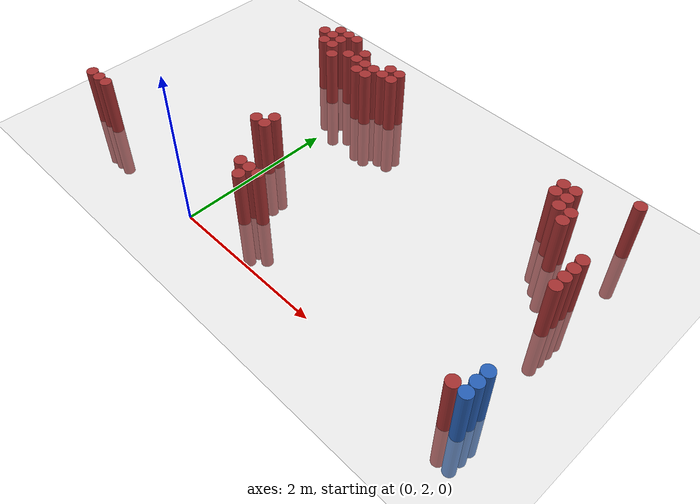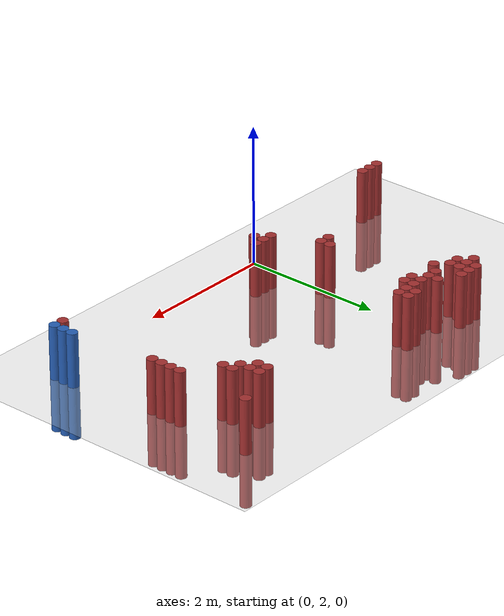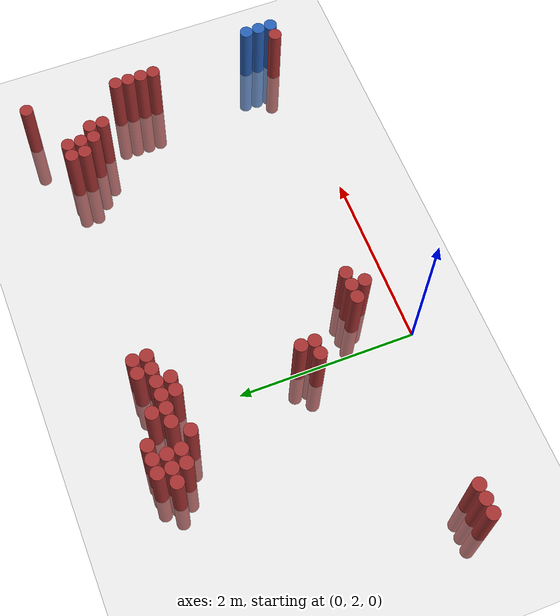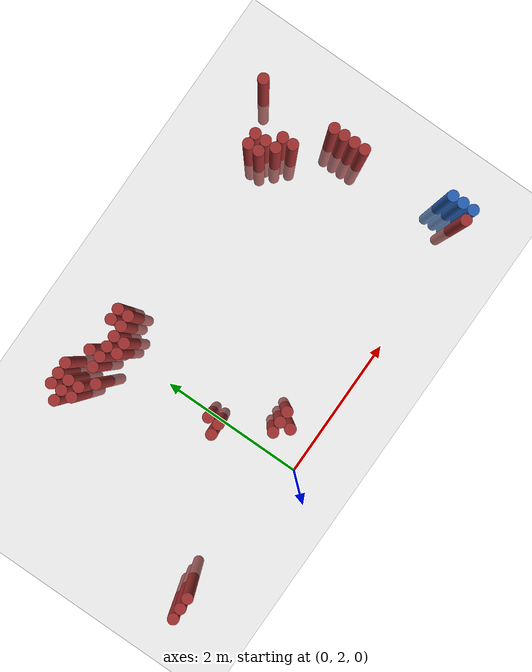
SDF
<sdf version="1.6">
 <world name="default">
  <model name="ground_plane">
   <static>1</static>
   <link name="link">
    <collision name="collision">
     <geometry><plane><normal>0 0 1</normal><size>100 100</size></plane></geometry>
     <surface><friction><ode><mu>100</mu><mu2>50</mu2></ode></friction></surface>
    </collision>
    <visual name="visual">
     <cast_shadows>0</cast_shadows>
     <geometry><plane><normal>0 0 1</normal><size>100 100</size></plane></geometry>
     <material>
      <script><uri>file://media/materials/scripts/gazebo.material</uri><name>Gazebo/Grey</name></script>
     </material>
    </visual>
   </link>
  </model>
  <model name="unit_cylinder_142">
   <static>1</static>
   <pose>3.925000 2.125000 0.000000 0.000000 0.000000 0.000000</pose>
   <link name="link">
    <inertial>
     <mass>1</mass>
     <inertia><ixx>0.145833</ixx><ixy>0</ixy><ixz>0</ixz><iyy>0.145833</iyy><iyz>0</iyz><izz>0.125</izz></inertia>
    </inertial>
    <collision name="collision">
     <geometry><cylinder><radius>0.075000</radius><length>1.5</length></cylinder></geometry>
    </collision>
    <visual name="visual">
     <geometry><cylinder><radius>0.075000</radius><length>1.5</length></cylinder></geometry>
     <material>
      <ambient>0.152000 0.379000 0.720000 1</ambient>
      <diffuse>0.152000 0.379000 0.720000 1</diffuse>
     </material>
     <material>
      <script><name>Gazebo/Grey</name><uri>file://media/materials/scripts/gazebo.material</uri></script>
     </material>
    </visual>
   </link>
  </model>
  <model name="unit_cylinder_144">
   <static>1</static>
   <pose>3.925000 2.275000 0.000000 0.000000 0.000000 0.000000</pose>
   <link name="link">
    <inertial>
     <mass>1</mass>
     <inertia><ixx>0.145833</ixx><ixy>0</ixy><ixz>0</ixz><iyy>0.145833</iyy><iyz>0</iyz><izz>0.125</izz></inertia>
    </inertial>
    <collision name="collision">
     <geometry><cylinder><radius>0.075000</radius><length>1.5</length></cylinder></geometry>
    </collision>
    <visual name="visual">
     <geometry><cylinder><radius>0.075000</radius><length>1.5</length></cylinder></geometry>
     <material>
      <ambient>0.152000 0.379000 0.720000 1</ambient>
      <diffuse>0.152000 0.379000 0.720000 1</diffuse>
     </material>
     <material>
      <script><name>Gazebo/Grey</name><uri>file://media/materials/scripts/gazebo.material</uri></script>
     </material>
    </visual>
   </link>
  </model>
  <model name="unit_cylinder_146">
   <static>1</static>
   <pose>3.925000 2.425000 0.000000 0.000000 0.000000 0.000000</pose>
   <link name="link">
    <inertial>
     <mass>1</mass>
     <inertia><ixx>0.145833</ixx><ixy>0</ixy><ixz>0</ixz><iyy>0.145833</iyy><iyz>0</iyz><izz>0.125</izz></inertia>
    </inertial>
    <collision name="collision">
     <geometry><cylinder><radius>0.075000</radius><length>1.5</length></cylinder></geometry>
    </collision>
    <visual name="visual">
     <geometry><cylinder><radius>0.075000</radius><length>1.5</length></cylinder></geometry>
     <material>
      <ambient>0.152000 0.379000 0.720000 1</ambient>
      <diffuse>0.152000 0.379000 0.720000 1</diffuse>
     </material>
     <material>
      <script><name>Gazebo/Grey</name><uri>file://media/materials/scripts/gazebo.material</uri></script>
     </material>
    </visual>
   </link>
  </model>
  <model name="unit_cylinder_291">
   <static>1</static>
   <pose>-2.225000 2.275000 0.000000 0.000000 0.000000 0.000000</pose>
   <link name="link">
    <inertial>
     <mass>1</mass>
     <inertia><ixx>0.145833</ixx><ixy>0</ixy><ixz>0</ixz><iyy>0.145833</iyy><iyz>0</iyz><izz>0.125</izz></inertia>
    </inertial>
    <collision name="collision">
     <geometry><cylinder><radius>0.075000</radius><length>1.5</length></cylinder></geometry>
    </collision>
    <visual name="visual">
     <geometry><cylinder><radius>0.075000</radius><length>1.5</length></cylinder></geometry>
     <material>
      <ambient>0.648000 0.192000 0.192000 1</ambient>
      <diffuse>0.648000 0.192000 0.192000 1</diffuse>
     </material>
     <material>
      <script><name>Gazebo/Grey</name><uri>file://media/materials/scripts/gazebo.material</uri></script>
     </material>
    </visual>
   </link>
  </model>
  <model name="unit_cylinder_294">
   <static>1</static>
   <pose>-2.075000 2.275000 0.000000 0.000000 0.000000 0.000000</pose>
   <link name="link">
    <inertial>
     <mass>1</mass>
     <inertia><ixx>0.145833</ixx><ixy>0</ixy><ixz>0</ixz><iyy>0.145833</iyy><iyz>0</iyz><izz>0.125</izz></inertia>
    </inertial>
    <collision name="collision">
     <geometry><cylinder><radius>0.075000</radius><length>1.5</length></cylinder></geometry>
    </collision>
    <visual name="visual">
     <geometry><cylinder><radius>0.075000</radius><length>1.5</length></cylinder></geometry>
     <material>
      <ambient>0.648000 0.192000 0.192000 1</ambient>
      <diffuse>0.648000 0.192000 0.192000 1</diffuse>
     </material>
     <material>
      <script><name>Gazebo/Grey</name><uri>file://media/materials/scripts/gazebo.material</uri></script>
     </material>
    </visual>
   </link>
  </model>
  <model name="unit_cylinder_298">
   <static>1</static>
   <pose>-1.925000 2.275000 0.000000 0.000000 0.000000 0.000000</pose>
   <link name="link">
    <inertial>
     <mass>1</mass>
     <inertia><ixx>0.145833</ixx><ixy>0</ixy><ixz>0</ixz><iyy>0.145833</iyy><iyz>0</iyz><izz>0.125</izz></inertia>
    </inertial>
    <collision name="collision">
     <geometry><cylinder><radius>0.075000</radius><length>1.5</length></cylinder></geometry>
    </collision>
    <visual name="visual">
     <geometry><cylinder><radius>0.075000</radius><length>1.5</length></cylinder></geometry>
     <material>
      <ambient>0.648000 0.192000 0.192000 1</ambient>
      <diffuse>0.648000 0.192000 0.192000 1</diffuse>
     </material>
     <material>
      <script><name>Gazebo/Grey</name><uri>file://media/materials/scripts/gazebo.material</uri></script>
     </material>
    </visual>
   </link>
  </model>
  <model name="unit_cylinder_310">
   <static>1</static>
   <pose>-0.875000 4.975000 0.000000 0.000000 0.000000 0.000000</pose>
   <link name="link">
    <inertial>
     <mass>1</mass>
     <inertia><ixx>0.145833</ixx><ixy>0</ixy><ixz>0</ixz><iyy>0.145833</iyy><iyz>0</iyz><izz>0.125</izz></inertia>
    </inertial>
    <collision name="collision">
     <geometry><cylinder><radius>0.075000</radius><length>1.5</length></cylinder></geometry>
    </collision>
    <visual name="visual">
     <geometry><cylinder><radius>0.075000</radius><length>1.5</length></cylinder></geometry>
     <material>
      <ambient>0.648000 0.192000 0.192000 1</ambient>
      <diffuse>0.648000 0.192000 0.192000 1</diffuse>
     </material>
     <material>
      <script><name>Gazebo/Grey</name><uri>file://media/materials/scripts/gazebo.material</uri></script>
     </material>
    </visual>
   </link>
  </model>
  <model name="unit_cylinder_311">
   <static>1</static>
   <pose>-0.725000 4.825000 0.000000 0.000000 0.000000 0.000000</pose>
   <link name="link">
    <inertial>
     <mass>1</mass>
     <inertia><ixx>0.145833</ixx><ixy>0</ixy><ixz>0</ixz><iyy>0.145833</iyy><iyz>0</iyz><izz>0.125</izz></inertia>
    </inertial>
    <collision name="collision">
     <geometry><cylinder><radius>0.075000</radius><length>1.5</length></cylinder></geometry>
    </collision>
    <visual name="visual">
     <geometry><cylinder><radius>0.075000</radius><length>1.5</length></cylinder></geometry>
     <material>
      <ambient>0.648000 0.192000 0.192000 1</ambient>
      <diffuse>0.648000 0.192000 0.192000 1</diffuse>
     </material>
     <material>
      <script><name>Gazebo/Grey</name><uri>file://media/materials/scripts/gazebo.material</uri></script>
     </material>
    </visual>
   </link>
  </model>
  <model name="unit_cylinder_312">
   <static>1</static>
   <pose>-0.725000 4.975000 0.000000 0.000000 0.000000 0.000000</pose>
   <link name="link">
    <inertial>
     <mass>1</mass>
     <inertia><ixx>0.145833</ixx><ixy>0</ixy><ixz>0</ixz><iyy>0.145833</iyy><iyz>0</iyz><izz>0.125</izz></inertia>
    </inertial>
    <collision name="collision">
     <geometry><cylinder><radius>0.075000</radius><length>1.5</length></cylinder></geometry>
    </collision>
    <visual name="visual">
     <geometry><cylinder><radius>0.075000</radius><length>1.5</length></cylinder></geometry>
     <material>
      <ambient>0.648000 0.192000 0.192000 1</ambient>
      <diffuse>0.648000 0.192000 0.192000 1</diffuse>
     </material>
     <material>
      <script><name>Gazebo/Grey</name><uri>file://media/materials/scripts/gazebo.material</uri></script>
     </material>
    </visual>
   </link>
  </model>
  <model name="unit_cylinder_313">
   <static>1</static>
   <pose>-0.725000 5.125000 0.000000 0.000000 0.000000 0.000000</pose>
   <link name="link">
    <inertial>
     <mass>1</mass>
     <inertia><ixx>0.145833</ixx><ixy>0</ixy><ixz>0</ixz><iyy>0.145833</iyy><iyz>0</iyz><izz>0.125</izz></inertia>
    </inertial>
    <collision name="collision">
     <geometry><cylinder><radius>0.075000</radius><length>1.5</length></cylinder></geometry>
    </collision>
    <visual name="visual">
     <geometry><cylinder><radius>0.075000</radius><length>1.5</length></cylinder></geometry>
     <material>
      <ambient>0.648000 0.192000 0.192000 1</ambient>
      <diffuse>0.648000 0.192000 0.192000 1</diffuse>
     </material>
     <material>
      <script><name>Gazebo/Grey</name><uri>file://media/materials/scripts/gazebo.material</uri></script>
     </material>
    </visual>
   </link>
  </model>
  <model name="unit_cylinder_314">
   <static>1</static>
   <pose>-0.575000 4.825000 0.000000 0.000000 0.000000 0.000000</pose>
   <link name="link">
    <inertial>
     <mass>1</mass>
     <inertia><ixx>0.145833</ixx><ixy>0</ixy><ixz>0</ixz><iyy>0.145833</iyy><iyz>0</iyz><izz>0.125</izz></inertia>
    </inertial>
    <collision name="collision">
     <geometry><cylinder><radius>0.075000</radius><length>1.5</length></cylinder></geometry>
    </collision>
    <visual name="visual">
     <geometry><cylinder><radius>0.075000</radius><length>1.5</length></cylinder></geometry>
     <material>
      <ambient>0.648000 0.192000 0.192000 1</ambient>
      <diffuse>0.648000 0.192000 0.192000 1</diffuse>
     </material>
     <material>
      <script><name>Gazebo/Grey</name><uri>file://media/materials/scripts/gazebo.material</uri></script>
     </material>
    </visual>
   </link>
  </model>
  <model name="unit_cylinder_315">
   <static>1</static>
   <pose>-0.575000 4.975000 0.000000 0.000000 0.000000 0.000000</pose>
   <link name="link">
    <inertial>
     <mass>1</mass>
     <inertia><ixx>0.145833</ixx><ixy>0</ixy><ixz>0</ixz><iyy>0.145833</iyy><iyz>0</iyz><izz>0.125</izz></inertia>
    </inertial>
    <collision name="collision">
     <geometry><cylinder><radius>0.075000</radius><length>1.5</length></cylinder></geometry>
    </collision>
    <visual name="visual">
     <geometry><cylinder><radius>0.075000</radius><length>1.5</length></cylinder></geometry>
     <material>
      <ambient>0.648000 0.192000 0.192000 1</ambient>
      <diffuse>0.648000 0.192000 0.192000 1</diffuse>
     </material>
     <material>
      <script><name>Gazebo/Grey</name><uri>file://media/materials/scripts/gazebo.material</uri></script>
     </material>
    </visual>
   </link>
  </model>
  <model name="unit_cylinder_316">
   <static>1</static>
   <pose>-0.575000 5.125000 0.000000 0.000000 0.000000 0.000000</pose>
   <link name="link">
    <inertial>
     <mass>1</mass>
     <inertia><ixx>0.145833</ixx><ixy>0</ixy><ixz>0</ixz><iyy>0.145833</iyy><iyz>0</iyz><izz>0.125</izz></inertia>
    </inertial>
    <collision name="collision">
     <geometry><cylinder><radius>0.075000</radius><length>1.5</length></cylinder></geometry>
    </collision>
    <visual name="visual">
     <geometry><cylinder><radius>0.075000</radius><length>1.5</length></cylinder></geometry>
     <material>
      <ambient>0.648000 0.192000 0.192000 1</ambient>
      <diffuse>0.648000 0.192000 0.192000 1</diffuse>
     </material>
     <material>
      <script><name>Gazebo/Grey</name><uri>file://media/materials/scripts/gazebo.material</uri></script>
     </material>
    </visual>
   </link>
  </model>
  <model name="unit_cylinder_317">
   <static>1</static>
   <pose>-0.425000 4.675000 0.000000 0.000000 0.000000 0.000000</pose>
   <link name="link">
    <inertial>
     <mass>1</mass>
     <inertia><ixx>0.145833</ixx><ixy>0</ixy><ixz>0</ixz><iyy>0.145833</iyy><iyz>0</iyz><izz>0.125</izz></inertia>
    </inertial>
    <collision name="collision">
     <geometry><cylinder><radius>0.075000</radius><length>1.5</length></cylinder></geometry>
    </collision>
    <visual name="visual">
     <geometry><cylinder><radius>0.075000</radius><length>1.5</length></cylinder></geometry>
     <material>
      <ambient>0.648000 0.192000 0.192000 1</ambient>
      <diffuse>0.648000 0.192000 0.192000 1</diffuse>
     </material>
     <material>
      <script><name>Gazebo/Grey</name><uri>file://media/materials/scripts/gazebo.material</uri></script>
     </material>
    </visual>
   </link>
  </model>
  <model name="unit_cylinder_318">
   <static>1</static>
   <pose>-0.425000 5.125000 0.000000 0.000000 0.000000 0.000000</pose>
   <link name="link">
    <inertial>
     <mass>1</mass>
     <inertia><ixx>0.145833</ixx><ixy>0</ixy><ixz>0</ixz><iyy>0.145833</iyy><iyz>0</iyz><izz>0.125</izz></inertia>
    </inertial>
    <collision name="collision">
     <geometry><cylinder><radius>0.075000</radius><length>1.5</length></cylinder></geometry>
    </collision>
    <visual name="visual">
     <geometry><cylinder><radius>0.075000</radius><length>1.5</length></cylinder></geometry>
     <material>
      <ambient>0.648000 0.192000 0.192000 1</ambient>
      <diffuse>0.648000 0.192000 0.192000 1</diffuse>
     </material>
     <material>
      <script><name>Gazebo/Grey</name><uri>file://media/materials/scripts/gazebo.material</uri></script>
     </material>
    </visual>
   </link>
  </model>
  <model name="unit_cylinder_321">
   <static>1</static>
   <pose>-0.275000 4.825000 0.000000 0.000000 0.000000 0.000000</pose>
   <link name="link">
    <inertial>
     <mass>1</mass>
     <inertia><ixx>0.145833</ixx><ixy>0</ixy><ixz>0</ixz><iyy>0.145833</iyy><iyz>0</iyz><izz>0.125</izz></inertia>
    </inertial>
    <collision name="collision">
     <geometry><cylinder><radius>0.075000</radius><length>1.5</length></cylinder></geometry>
    </collision>
    <visual name="visual">
     <geometry><cylinder><radius>0.075000</radius><length>1.5</length></cylinder></geometry>
     <material>
      <ambient>0.648000 0.192000 0.192000 1</ambient>
      <diffuse>0.648000 0.192000 0.192000 1</diffuse>
     </material>
     <material>
      <script><name>Gazebo/Grey</name><uri>file://media/materials/scripts/gazebo.material</uri></script>
     </material>
    </visual>
   </link>
  </model>
  <model name="unit_cylinder_326">
   <static>1</static>
   <pose>-0.125000 3.175000 0.000000 0.000000 0.000000 0.000000</pose>
   <link name="link">
    <inertial>
     <mass>1</mass>
     <inertia><ixx>0.145833</ixx><ixy>0</ixy><ixz>0</ixz><iyy>0.145833</iyy><iyz>0</iyz><izz>0.125</izz></inertia>
    </inertial>
    <collision name="collision">
     <geometry><cylinder><radius>0.075000</radius><length>1.5</length></cylinder></geometry>
    </collision>
    <visual name="visual">
     <geometry><cylinder><radius>0.075000</radius><length>1.5</length></cylinder></geometry>
     <material>
      <ambient>0.648000 0.192000 0.192000 1</ambient>
      <diffuse>0.648000 0.192000 0.192000 1</diffuse>
     </material>
     <material>
      <script><name>Gazebo/Grey</name><uri>file://media/materials/scripts/gazebo.material</uri></script>
     </material>
    </visual>
   </link>
  </model>
  <model name="unit_cylinder_327">
   <static>1</static>
   <pose>-0.125000 4.825000 0.000000 0.000000 0.000000 0.000000</pose>
   <link name="link">
    <inertial>
     <mass>1</mass>
     <inertia><ixx>0.145833</ixx><ixy>0</ixy><ixz>0</ixz><iyy>0.145833</iyy><iyz>0</iyz><izz>0.125</izz></inertia>
    </inertial>
    <collision name="collision">
     <geometry><cylinder><radius>0.075000</radius><length>1.5</length></cylinder></geometry>
    </collision>
    <visual name="visual">
     <geometry><cylinder><radius>0.075000</radius><length>1.5</length></cylinder></geometry>
     <material>
      <ambient>0.648000 0.192000 0.192000 1</ambient>
      <diffuse>0.648000 0.192000 0.192000 1</diffuse>
     </material>
     <material>
      <script><name>Gazebo/Grey</name><uri>file://media/materials/scripts/gazebo.material</uri></script>
     </material>
    </visual>
   </link>
  </model>
  <model name="unit_cylinder_328">
   <static>1</static>
   <pose>-0.125000 4.975000 0.000000 0.000000 0.000000 0.000000</pose>
   <link name="link">
    <inertial>
     <mass>1</mass>
     <inertia><ixx>0.145833</ixx><ixy>0</ixy><ixz>0</ixz><iyy>0.145833</iyy><iyz>0</iyz><izz>0.125</izz></inertia>
    </inertial>
    <collision name="collision">
     <geometry><cylinder><radius>0.075000</radius><length>1.5</length></cylinder></geometry>
    </collision>
    <visual name="visual">
     <geometry><cylinder><radius>0.075000</radius><length>1.5</length></cylinder></geometry>
     <material>
      <ambient>0.648000 0.192000 0.192000 1</ambient>
      <diffuse>0.648000 0.192000 0.192000 1</diffuse>
     </material>
     <material>
      <script><name>Gazebo/Grey</name><uri>file://media/materials/scripts/gazebo.material</uri></script>
     </material>
    </visual>
   </link>
  </model>
  <model name="unit_cylinder_330">
   <static>1</static>
   <pose>0.025000 3.175000 0.000000 0.000000 0.000000 0.000000</pose>
   <link name="link">
    <inertial>
     <mass>1</mass>
     <inertia><ixx>0.145833</ixx><ixy>0</ixy><ixz>0</ixz><iyy>0.145833</iyy><iyz>0</iyz><izz>0.125</izz></inertia>
    </inertial>
    <collision name="collision">
     <geometry><cylinder><radius>0.075000</radius><length>1.5</length></cylinder></geometry>
    </collision>
    <visual name="visual">
     <geometry><cylinder><radius>0.075000</radius><length>1.5</length></cylinder></geometry>
     <material>
      <ambient>0.648000 0.192000 0.192000 1</ambient>
      <diffuse>0.648000 0.192000 0.192000 1</diffuse>
     </material>
     <material>
      <script><name>Gazebo/Grey</name><uri>file://media/materials/scripts/gazebo.material</uri></script>
     </material>
    </visual>
   </link>
  </model>
  <model name="unit_cylinder_331">
   <static>1</static>
   <pose>0.025000 3.325000 0.000000 0.000000 0.000000 0.000000</pose>
   <link name="link">
    <inertial>
     <mass>1</mass>
     <inertia><ixx>0.145833</ixx><ixy>0</ixy><ixz>0</ixz><iyy>0.145833</iyy><iyz>0</iyz><izz>0.125</izz></inertia>
    </inertial>
    <collision name="collision">
     <geometry><cylinder><radius>0.075000</radius><length>1.5</length></cylinder></geometry>
    </collision>
    <visual name="visual">
     <geometry><cylinder><radius>0.075000</radius><length>1.5</length></cylinder></geometry>
     <material>
      <ambient>0.648000 0.192000 0.192000 1</ambient>
      <diffuse>0.648000 0.192000 0.192000 1</diffuse>
     </material>
     <material>
      <script><name>Gazebo/Grey</name><uri>file://media/materials/scripts/gazebo.material</uri></script>
     </material>
    </visual>
   </link>
  </model>
  <model name="unit_cylinder_332">
   <static>1</static>
   <pose>0.025000 4.675000 0.000000 0.000000 0.000000 0.000000</pose>
   <link name="link">
    <inertial>
     <mass>1</mass>
     <inertia><ixx>0.145833</ixx><ixy>0</ixy><ixz>0</ixz><iyy>0.145833</iyy><iyz>0</iyz><izz>0.125</izz></inertia>
    </inertial>
    <collision name="collision">
     <geometry><cylinder><radius>0.075000</radius><length>1.5</length></cylinder></geometry>
    </collision>
    <visual name="visual">
     <geometry><cylinder><radius>0.075000</radius><length>1.5</length></cylinder></geometry>
     <material>
      <ambient>0.648000 0.192000 0.192000 1</ambient>
      <diffuse>0.648000 0.192000 0.192000 1</diffuse>
     </material>
     <material>
      <script><name>Gazebo/Grey</name><uri>file://media/materials/scripts/gazebo.material</uri></script>
     </material>
    </visual>
   </link>
  </model>
  <model name="unit_cylinder_333">
   <static>1</static>
   <pose>0.025000 4.825000 0.000000 0.000000 0.000000 0.000000</pose>
   <link name="link">
    <inertial>
     <mass>1</mass>
     <inertia><ixx>0.145833</ixx><ixy>0</ixy><ixz>0</ixz><iyy>0.145833</iyy><iyz>0</iyz><izz>0.125</izz></inertia>
    </inertial>
    <collision name="collision">
     <geometry><cylinder><radius>0.075000</radius><length>1.5</length></cylinder></geometry>
    </collision>
    <visual name="visual">
     <geometry><cylinder><radius>0.075000</radius><length>1.5</length></cylinder></geometry>
     <material>
      <ambient>0.648000 0.192000 0.192000 1</ambient>
      <diffuse>0.648000 0.192000 0.192000 1</diffuse>
     </material>
     <material>
      <script><name>Gazebo/Grey</name><uri>file://media/materials/scripts/gazebo.material</uri></script>
     </material>
    </visual>
   </link>
  </model>
  <model name="unit_cylinder_334">
   <static>1</static>
   <pose>0.175000 4.675000 0.000000 0.000000 0.000000 0.000000</pose>
   <link name="link">
    <inertial>
     <mass>1</mass>
     <inertia><ixx>0.145833</ixx><ixy>0</ixy><ixz>0</ixz><iyy>0.145833</iyy><iyz>0</iyz><izz>0.125</izz></inertia>
    </inertial>
    <collision name="collision">
     <geometry><cylinder><radius>0.075000</radius><length>1.5</length></cylinder></geometry>
    </collision>
    <visual name="visual">
     <geometry><cylinder><radius>0.075000</radius><length>1.5</length></cylinder></geometry>
     <material>
      <ambient>0.648000 0.192000 0.192000 1</ambient>
      <diffuse>0.648000 0.192000 0.192000 1</diffuse>
     </material>
     <material>
      <script><name>Gazebo/Grey</name><uri>file://media/materials/scripts/gazebo.material</uri></script>
     </material>
    </visual>
   </link>
  </model>
  <model name="unit_cylinder_335">
   <static>1</static>
   <pose>0.175000 4.825000 0.000000 0.000000 0.000000 0.000000</pose>
   <link name="link">
    <inertial>
     <mass>1</mass>
     <inertia><ixx>0.145833</ixx><ixy>0</ixy><ixz>0</ixz><iyy>0.145833</iyy><iyz>0</iyz><izz>0.125</izz></inertia>
    </inertial>
    <collision name="collision">
     <geometry><cylinder><radius>0.075000</radius><length>1.5</length></cylinder></geometry>
    </collision>
    <visual name="visual">
     <geometry><cylinder><radius>0.075000</radius><length>1.5</length></cylinder></geometry>
     <material>
      <ambient>0.648000 0.192000 0.192000 1</ambient>
      <diffuse>0.648000 0.192000 0.192000 1</diffuse>
     </material>
     <material>
      <script><name>Gazebo/Grey</name><uri>file://media/materials/scripts/gazebo.material</uri></script>
     </material>
    </visual>
   </link>
  </model>
  <model name="unit_cylinder_337">
   <static>1</static>
   <pose>0.325000 2.575000 0.000000 0.000000 0.000000 0.000000</pose>
   <link name="link">
    <inertial>
     <mass>1</mass>
     <inertia><ixx>0.145833</ixx><ixy>0</ixy><ixz>0</ixz><iyy>0.145833</iyy><iyz>0</iyz><izz>0.125</izz></inertia>
    </inertial>
    <collision name="collision">
     <geometry><cylinder><radius>0.075000</radius><length>1.5</length></cylinder></geometry>
    </collision>
    <visual name="visual">
     <geometry><cylinder><radius>0.075000</radius><length>1.5</length></cylinder></geometry>
     <material>
      <ambient>0.648000 0.192000 0.192000 1</ambient>
      <diffuse>0.648000 0.192000 0.192000 1</diffuse>
     </material>
     <material>
      <script><name>Gazebo/Grey</name><uri>file://media/materials/scripts/gazebo.material</uri></script>
     </material>
    </visual>
   </link>
  </model>
  <model name="unit_cylinder_338">
   <static>1</static>
   <pose>0.325000 4.825000 0.000000 0.000000 0.000000 0.000000</pose>
   <link name="link">
    <inertial>
     <mass>1</mass>
     <inertia><ixx>0.145833</ixx><ixy>0</ixy><ixz>0</ixz><iyy>0.145833</iyy><iyz>0</iyz><izz>0.125</izz></inertia>
    </inertial>
    <collision name="collision">
     <geometry><cylinder><radius>0.075000</radius><length>1.5</length></cylinder></geometry>
    </collision>
    <visual name="visual">
     <geometry><cylinder><radius>0.075000</radius><length>1.5</length></cylinder></geometry>
     <material>
      <ambient>0.648000 0.192000 0.192000 1</ambient>
      <diffuse>0.648000 0.192000 0.192000 1</diffuse>
     </material>
     <material>
      <script><name>Gazebo/Grey</name><uri>file://media/materials/scripts/gazebo.material</uri></script>
     </material>
    </visual>
   </link>
  </model>
  <model name="unit_cylinder_339">
   <static>1</static>
   <pose>0.325000 4.975000 0.000000 0.000000 0.000000 0.000000</pose>
   <link name="link">
    <inertial>
     <mass>1</mass>
     <inertia><ixx>0.145833</ixx><ixy>0</ixy><ixz>0</ixz><iyy>0.145833</iyy><iyz>0</iyz><izz>0.125</izz></inertia>
    </inertial>
    <collision name="collision">
     <geometry><cylinder><radius>0.075000</radius><length>1.5</length></cylinder></geometry>
    </collision>
    <visual name="visual">
     <geometry><cylinder><radius>0.075000</radius><length>1.5</length></cylinder></geometry>
     <material>
      <ambient>0.648000 0.192000 0.192000 1</ambient>
      <diffuse>0.648000 0.192000 0.192000 1</diffuse>
     </material>
     <material>
      <script><name>Gazebo/Grey</name><uri>file://media/materials/scripts/gazebo.material</uri></script>
     </material>
    </visual>
   </link>
  </model>
  <model name="unit_cylinder_341">
   <static>1</static>
   <pose>0.475000 2.425000 0.000000 0.000000 0.000000 0.000000</pose>
   <link name="link">
    <inertial>
     <mass>1</mass>
     <inertia><ixx>0.145833</ixx><ixy>0</ixy><ixz>0</ixz><iyy>0.145833</iyy><iyz>0</iyz><izz>0.125</izz></inertia>
    </inertial>
    <collision name="collision">
     <geometry><cylinder><radius>0.075000</radius><length>1.5</length></cylinder></geometry>
    </collision>
    <visual name="visual">
     <geometry><cylinder><radius>0.075000</radius><length>1.5</length></cylinder></geometry>
     <material>
      <ambient>0.648000 0.192000 0.192000 1</ambient>
      <diffuse>0.648000 0.192000 0.192000 1</diffuse>
     </material>
     <material>
      <script><name>Gazebo/Grey</name><uri>file://media/materials/scripts/gazebo.material</uri></script>
     </material>
    </visual>
   </link>
  </model>
  <model name="unit_cylinder_342">
   <static>1</static>
   <pose>0.475000 2.575000 0.000000 0.000000 0.000000 0.000000</pose>
   <link name="link">
    <inertial>
     <mass>1</mass>
     <inertia><ixx>0.145833</ixx><ixy>0</ixy><ixz>0</ixz><iyy>0.145833</iyy><iyz>0</iyz><izz>0.125</izz></inertia>
    </inertial>
    <collision name="collision">
     <geometry><cylinder><radius>0.075000</radius><length>1.5</length></cylinder></geometry>
    </collision>
    <visual name="visual">
     <geometry><cylinder><radius>0.075000</radius><length>1.5</length></cylinder></geometry>
     <material>
      <ambient>0.648000 0.192000 0.192000 1</ambient>
      <diffuse>0.648000 0.192000 0.192000 1</diffuse>
     </material>
     <material>
      <script><name>Gazebo/Grey</name><uri>file://media/materials/scripts/gazebo.material</uri></script>
     </material>
    </visual>
   </link>
  </model>
  <model name="unit_cylinder_343">
   <static>1</static>
   <pose>0.475000 4.825000 0.000000 0.000000 0.000000 0.000000</pose>
   <link name="link">
    <inertial>
     <mass>1</mass>
     <inertia><ixx>0.145833</ixx><ixy>0</ixy><ixz>0</ixz><iyy>0.145833</iyy><iyz>0</iyz><izz>0.125</izz></inertia>
    </inertial>
    <collision name="collision">
     <geometry><cylinder><radius>0.075000</radius><length>1.5</length></cylinder></geometry>
    </collision>
    <visual name="visual">
     <geometry><cylinder><radius>0.075000</radius><length>1.5</length></cylinder></geometry>
     <material>
      <ambient>0.648000 0.192000 0.192000 1</ambient>
      <diffuse>0.648000 0.192000 0.192000 1</diffuse>
     </material>
     <material>
      <script><name>Gazebo/Grey</name><uri>file://media/materials/scripts/gazebo.material</uri></script>
     </material>
    </visual>
   </link>
  </model>
  <model name="unit_cylinder_344">
   <static>1</static>
   <pose>0.475000 4.975000 0.000000 0.000000 0.000000 0.000000</pose>
   <link name="link">
    <inertial>
     <mass>1</mass>
     <inertia><ixx>0.145833</ixx><ixy>0</ixy><ixz>0</ixz><iyy>0.145833</iyy><iyz>0</iyz><izz>0.125</izz></inertia>
    </inertial>
    <collision name="collision">
     <geometry><cylinder><radius>0.075000</radius><length>1.5</length></cylinder></geometry>
    </collision>
    <visual name="visual">
     <geometry><cylinder><radius>0.075000</radius><length>1.5</length></cylinder></geometry>
     <material>
      <ambient>0.648000 0.192000 0.192000 1</ambient>
      <diffuse>0.648000 0.192000 0.192000 1</diffuse>
     </material>
     <material>
      <script><name>Gazebo/Grey</name><uri>file://media/materials/scripts/gazebo.material</uri></script>
     </material>
    </visual>
   </link>
  </model>
  <model name="unit_cylinder_345">
   <static>1</static>
   <pose>0.625000 2.575000 0.000000 0.000000 0.000000 0.000000</pose>
   <link name="link">
    <inertial>
     <mass>1</mass>
     <inertia><ixx>0.145833</ixx><ixy>0</ixy><ixz>0</ixz><iyy>0.145833</iyy><iyz>0</iyz><izz>0.125</izz></inertia>
    </inertial>
    <collision name="collision">
     <geometry><cylinder><radius>0.075000</radius><length>1.5</length></cylinder></geometry>
    </collision>
    <visual name="visual">
     <geometry><cylinder><radius>0.075000</radius><length>1.5</length></cylinder></geometry>
     <material>
      <ambient>0.648000 0.192000 0.192000 1</ambient>
      <diffuse>0.648000 0.192000 0.192000 1</diffuse>
     </material>
     <material>
      <script><name>Gazebo/Grey</name><uri>file://media/materials/scripts/gazebo.material</uri></script>
     </material>
    </visual>
   </link>
  </model>
  <model name="unit_cylinder_359">
   <static>1</static>
   <pose>3.025000 4.675000 0.000000 0.000000 0.000000 0.000000</pose>
   <link name="link">
    <inertial>
     <mass>1</mass>
     <inertia><ixx>0.145833</ixx><ixy>0</ixy><ixz>0</ixz><iyy>0.145833</iyy><iyz>0</iyz><izz>0.125</izz></inertia>
    </inertial>
    <collision name="collision">
     <geometry><cylinder><radius>0.075000</radius><length>1.5</length></cylinder></geometry>
    </collision>
    <visual name="visual">
     <geometry><cylinder><radius>0.075000</radius><length>1.5</length></cylinder></geometry>
     <material>
      <ambient>0.648000 0.192000 0.192000 1</ambient>
      <diffuse>0.648000 0.192000 0.192000 1</diffuse>
     </material>
     <material>
      <script><name>Gazebo/Grey</name><uri>file://media/materials/scripts/gazebo.material</uri></script>
     </material>
    </visual>
   </link>
  </model>
  <model name="unit_cylinder_360">
   <static>1</static>
   <pose>3.025000 4.825000 0.000000 0.000000 0.000000 0.000000</pose>
   <link name="link">
    <inertial>
     <mass>1</mass>
     <inertia><ixx>0.145833</ixx><ixy>0</ixy><ixz>0</ixz><iyy>0.145833</iyy><iyz>0</iyz><izz>0.125</izz></inertia>
    </inertial>
    <collision name="collision">
     <geometry><cylinder><radius>0.075000</radius><length>1.5</length></cylinder></geometry>
    </collision>
    <visual name="visual">
     <geometry><cylinder><radius>0.075000</radius><length>1.5</length></cylinder></geometry>
     <material>
      <ambient>0.648000 0.192000 0.192000 1</ambient>
      <diffuse>0.648000 0.192000 0.192000 1</diffuse>
     </material>
     <material>
      <script><name>Gazebo/Grey</name><uri>file://media/materials/scripts/gazebo.material</uri></script>
     </material>
    </visual>
   </link>
  </model>
  <model name="unit_cylinder_361">
   <static>1</static>
   <pose>3.175000 4.525000 0.000000 0.000000 0.000000 0.000000</pose>
   <link name="link">
    <inertial>
     <mass>1</mass>
     <inertia><ixx>0.145833</ixx><ixy>0</ixy><ixz>0</ixz><iyy>0.145833</iyy><iyz>0</iyz><izz>0.125</izz></inertia>
    </inertial>
    <collision name="collision">
     <geometry><cylinder><radius>0.075000</radius><length>1.5</length></cylinder></geometry>
    </collision>
    <visual name="visual">
     <geometry><cylinder><radius>0.075000</radius><length>1.5</length></cylinder></geometry>
     <material>
      <ambient>0.648000 0.192000 0.192000 1</ambient>
      <diffuse>0.648000 0.192000 0.192000 1</diffuse>
     </material>
     <material>
      <script><name>Gazebo/Grey</name><uri>file://media/materials/scripts/gazebo.material</uri></script>
     </material>
    </visual>
   </link>
  </model>
  <model name="unit_cylinder_362">
   <static>1</static>
   <pose>3.175000 4.675000 0.000000 0.000000 0.000000 0.000000</pose>
   <link name="link">
    <inertial>
     <mass>1</mass>
     <inertia><ixx>0.145833</ixx><ixy>0</ixy><ixz>0</ixz><iyy>0.145833</iyy><iyz>0</iyz><izz>0.125</izz></inertia>
    </inertial>
    <collision name="collision">
     <geometry><cylinder><radius>0.075000</radius><length>1.5</length></cylinder></geometry>
    </collision>
    <visual name="visual">
     <geometry><cylinder><radius>0.075000</radius><length>1.5</length></cylinder></geometry>
     <material>
      <ambient>0.648000 0.192000 0.192000 1</ambient>
      <diffuse>0.648000 0.192000 0.192000 1</diffuse>
     </material>
     <material>
      <script><name>Gazebo/Grey</name><uri>file://media/materials/scripts/gazebo.material</uri></script>
     </material>
    </visual>
   </link>
  </model>
  <model name="unit_cylinder_363">
   <static>1</static>
   <pose>3.175000 4.825000 0.000000 0.000000 0.000000 0.000000</pose>
   <link name="link">
    <inertial>
     <mass>1</mass>
     <inertia><ixx>0.145833</ixx><ixy>0</ixy><ixz>0</ixz><iyy>0.145833</iyy><iyz>0</iyz><izz>0.125</izz></inertia>
    </inertial>
    <collision name="collision">
     <geometry><cylinder><radius>0.075000</radius><length>1.5</length></cylinder></geometry>
    </collision>
    <visual name="visual">
     <geometry><cylinder><radius>0.075000</radius><length>1.5</length></cylinder></geometry>
     <material>
      <ambient>0.648000 0.192000 0.192000 1</ambient>
      <diffuse>0.648000 0.192000 0.192000 1</diffuse>
     </material>
     <material>
      <script><name>Gazebo/Grey</name><uri>file://media/materials/scripts/gazebo.material</uri></script>
     </material>
    </visual>
   </link>
  </model>
  <model name="unit_cylinder_364">
   <static>1</static>
   <pose>3.325000 4.375000 0.000000 0.000000 0.000000 0.000000</pose>
   <link name="link">
    <inertial>
     <mass>1</mass>
     <inertia><ixx>0.145833</ixx><ixy>0</ixy><ixz>0</ixz><iyy>0.145833</iyy><iyz>0</iyz><izz>0.125</izz></inertia>
    </inertial>
    <collision name="collision">
     <geometry><cylinder><radius>0.075000</radius><length>1.5</length></cylinder></geometry>
    </collision>
    <visual name="visual">
     <geometry><cylinder><radius>0.075000</radius><length>1.5</length></cylinder></geometry>
     <material>
      <ambient>0.648000 0.192000 0.192000 1</ambient>
      <diffuse>0.648000 0.192000 0.192000 1</diffuse>
     </material>
     <material>
      <script><name>Gazebo/Grey</name><uri>file://media/materials/scripts/gazebo.material</uri></script>
     </material>
    </visual>
   </link>
  </model>
  <model name="unit_cylinder_365">
   <static>1</static>
   <pose>3.325000 4.525000 0.000000 0.000000 0.000000 0.000000</pose>
   <link name="link">
    <inertial>
     <mass>1</mass>
     <inertia><ixx>0.145833</ixx><ixy>0</ixy><ixz>0</ixz><iyy>0.145833</iyy><iyz>0</iyz><izz>0.125</izz></inertia>
    </inertial>
    <collision name="collision">
     <geometry><cylinder><radius>0.075000</radius><length>1.5</length></cylinder></geometry>
    </collision>
    <visual name="visual">
     <geometry><cylinder><radius>0.075000</radius><length>1.5</length></cylinder></geometry>
     <material>
      <ambient>0.648000 0.192000 0.192000 1</ambient>
      <diffuse>0.648000 0.192000 0.192000 1</diffuse>
     </material>
     <material>
      <script><name>Gazebo/Grey</name><uri>file://media/materials/scripts/gazebo.material</uri></script>
     </material>
    </visual>
   </link>
  </model>
  <model name="unit_cylinder_390">
   <static>1</static>
   <pose>3.775000 2.125000 0.000000 0.000000 0.000000 0.000000</pose>
   <link name="link">
    <inertial>
     <mass>1</mass>
     <inertia><ixx>0.145833</ixx><ixy>0</ixy><ixz>0</ixz><iyy>0.145833</iyy><iyz>0</iyz><izz>0.125</izz></inertia>
    </inertial>
    <collision name="collision">
     <geometry><cylinder><radius>0.075000</radius><length>1.5</length></cylinder></geometry>
    </collision>
    <visual name="visual">
     <geometry><cylinder><radius>0.075000</radius><length>1.5</length></cylinder></geometry>
     <material>
      <ambient>0.648000 0.192000 0.192000 1</ambient>
      <diffuse>0.648000 0.192000 0.192000 1</diffuse>
     </material>
     <material>
      <script><name>Gazebo/Grey</name><uri>file://media/materials/scripts/gazebo.material</uri></script>
     </material>
    </visual>
   </link>
  </model>
  <model name="unit_cylinder_391">
   <static>1</static>
   <pose>3.775000 3.625000 0.000000 0.000000 0.000000 0.000000</pose>
   <link name="link">
    <inertial>
     <mass>1</mass>
     <inertia><ixx>0.145833</ixx><ixy>0</ixy><ixz>0</ixz><iyy>0.145833</iyy><iyz>0</iyz><izz>0.125</izz></inertia>
    </inertial>
    <collision name="collision">
     <geometry><cylinder><radius>0.075000</radius><length>1.5</length></cylinder></geometry>
    </collision>
    <visual name="visual">
     <geometry><cylinder><radius>0.075000</radius><length>1.5</length></cylinder></geometry>
     <material>
      <ambient>0.648000 0.192000 0.192000 1</ambient>
      <diffuse>0.648000 0.192000 0.192000 1</diffuse>
     </material>
     <material>
      <script><name>Gazebo/Grey</name><uri>file://media/materials/scripts/gazebo.material</uri></script>
     </material>
    </visual>
   </link>
  </model>
  <model name="unit_cylinder_392">
   <static>1</static>
   <pose>3.775000 3.775000 0.000000 0.000000 0.000000 0.000000</pose>
   <link name="link">
    <inertial>
     <mass>1</mass>
     <inertia><ixx>0.145833</ixx><ixy>0</ixy><ixz>0</ixz><iyy>0.145833</iyy><iyz>0</iyz><izz>0.125</izz></inertia>
    </inertial>
    <collision name="collision">
     <geometry><cylinder><radius>0.075000</radius><length>1.5</length></cylinder></geometry>
    </collision>
    <visual name="visual">
     <geometry><cylinder><radius>0.075000</radius><length>1.5</length></cylinder></geometry>
     <material>
      <ambient>0.648000 0.192000 0.192000 1</ambient>
      <diffuse>0.648000 0.192000 0.192000 1</diffuse>
     </material>
     <material>
      <script><name>Gazebo/Grey</name><uri>file://media/materials/scripts/gazebo.material</uri></script>
     </material>
    </visual>
   </link>
  </model>
  <model name="unit_cylinder_393">
   <static>1</static>
   <pose>3.775000 3.925000 0.000000 0.000000 0.000000 0.000000</pose>
   <link name="link">
    <inertial>
     <mass>1</mass>
     <inertia><ixx>0.145833</ixx><ixy>0</ixy><ixz>0</ixz><iyy>0.145833</iyy><iyz>0</iyz><izz>0.125</izz></inertia>
    </inertial>
    <collision name="collision">
     <geometry><cylinder><radius>0.075000</radius><length>1.5</length></cylinder></geometry>
    </collision>
    <visual name="visual">
     <geometry><cylinder><radius>0.075000</radius><length>1.5</length></cylinder></geometry>
     <material>
      <ambient>0.648000 0.192000 0.192000 1</ambient>
      <diffuse>0.648000 0.192000 0.192000 1</diffuse>
     </material>
     <material>
      <script><name>Gazebo/Grey</name><uri>file://media/materials/scripts/gazebo.material</uri></script>
     </material>
    </visual>
   </link>
  </model>
  <model name="unit_cylinder_394">
   <static>1</static>
   <pose>3.775000 4.075000 0.000000 0.000000 0.000000 0.000000</pose>
   <link name="link">
    <inertial>
     <mass>1</mass>
     <inertia><ixx>0.145833</ixx><ixy>0</ixy><ixz>0</ixz><iyy>0.145833</iyy><iyz>0</iyz><izz>0.125</izz></inertia>
    </inertial>
    <collision name="collision">
     <geometry><cylinder><radius>0.075000</radius><length>1.5</length></cylinder></geometry>
    </collision>
    <visual name="visual">
     <geometry><cylinder><radius>0.075000</radius><length>1.5</length></cylinder></geometry>
     <material>
      <ambient>0.648000 0.192000 0.192000 1</ambient>
      <diffuse>0.648000 0.192000 0.192000 1</diffuse>
     </material>
     <material>
      <script><name>Gazebo/Grey</name><uri>file://media/materials/scripts/gazebo.material</uri></script>
     </material>
    </visual>
   </link>
  </model>
  <model name="unit_cylinder_395">
   <static>1</static>
   <pose>3.775000 5.125000 0.000000 0.000000 0.000000 0.000000</pose>
   <link name="link">
    <inertial>
     <mass>1</mass>
     <inertia><ixx>0.145833</ixx><ixy>0</ixy><ixz>0</ixz><iyy>0.145833</iyy><iyz>0</iyz><izz>0.125</izz></inertia>
    </inertial>
    <collision name="collision">
     <geometry><cylinder><radius>0.075000</radius><length>1.5</length></cylinder></geometry>
    </collision>
    <visual name="visual">
     <geometry><cylinder><radius>0.075000</radius><length>1.5</length></cylinder></geometry>
     <material>
      <ambient>0.648000 0.192000 0.192000 1</ambient>
      <diffuse>0.648000 0.192000 0.192000 1</diffuse>
     </material>
     <material>
      <script><name>Gazebo/Grey</name><uri>file://media/materials/scripts/gazebo.material</uri></script>
     </material>
    </visual>
   </link>
  </model>
  <model name="unit_cylinder_423">
   <static>1</static>
   <pose>3.925000 2.125000 0.000000 0.000000 0.000000 0.000000</pose>
   <link name="link">
    <inertial>
     <mass>1</mass>
     <inertia><ixx>0.145833</ixx><ixy>0</ixy><ixz>0</ixz><iyy>0.145833</iyy><iyz>0</iyz><izz>0.125</izz></inertia>
    </inertial>
    <collision name="collision">
     <geometry><cylinder><radius>0.075000</radius><length>1.5</length></cylinder></geometry>
    </collision>
    <visual name="visual">
     <geometry><cylinder><radius>0.075000</radius><length>1.5</length></cylinder></geometry>
     <material>
      <ambient>0.152000 0.379000 0.720000 1</ambient>
      <diffuse>0.152000 0.379000 0.720000 1</diffuse>
     </material>
     <material>
      <script><name>Gazebo/Grey</name><uri>file://media/materials/scripts/gazebo.material</uri></script>
     </material>
    </visual>
   </link>
  </model>
  <model name="unit_cylinder_424">
   <static>1</static>
   <pose>3.925000 2.275000 0.000000 0.000000 0.000000 0.000000</pose>
   <link name="link">
    <inertial>
     <mass>1</mass>
     <inertia><ixx>0.145833</ixx><ixy>0</ixy><ixz>0</ixz><iyy>0.145833</iyy><iyz>0</iyz><izz>0.125</izz></inertia>
    </inertial>
    <collision name="collision">
     <geometry><cylinder><radius>0.075000</radius><length>1.5</length></cylinder></geometry>
    </collision>
    <visual name="visual">
     <geometry><cylinder><radius>0.075000</radius><length>1.5</length></cylinder></geometry>
     <material>
      <ambient>0.152000 0.379000 0.720000 1</ambient>
      <diffuse>0.152000 0.379000 0.720000 1</diffuse>
     </material>
     <material>
      <script><name>Gazebo/Grey</name><uri>file://media/materials/scripts/gazebo.material</uri></script>
     </material>
    </visual>
   </link>
  </model>
  <model name="unit_cylinder_425">
   <static>1</static>
   <pose>3.925000 2.425000 0.000000 0.000000 0.000000 0.000000</pose>
   <link name="link">
    <inertial>
     <mass>1</mass>
     <inertia><ixx>0.145833</ixx><ixy>0</ixy><ixz>0</ixz><iyy>0.145833</iyy><iyz>0</iyz><izz>0.125</izz></inertia>
    </inertial>
    <collision name="collision">
     <geometry><cylinder><radius>0.075000</radius><length>1.5</length></cylinder></geometry>
    </collision>
    <visual name="visual">
     <geometry><cylinder><radius>0.075000</radius><length>1.5</length></cylinder></geometry>
     <material>
      <ambient>0.152000 0.379000 0.720000 1</ambient>
      <diffuse>0.152000 0.379000 0.720000 1</diffuse>
     </material>
     <material>
      <script><name>Gazebo/Grey</name><uri>file://media/materials/scripts/gazebo.material</uri></script>
     </material>
    </visual>
   </link>
  </model>
 </world>
</sdf>
